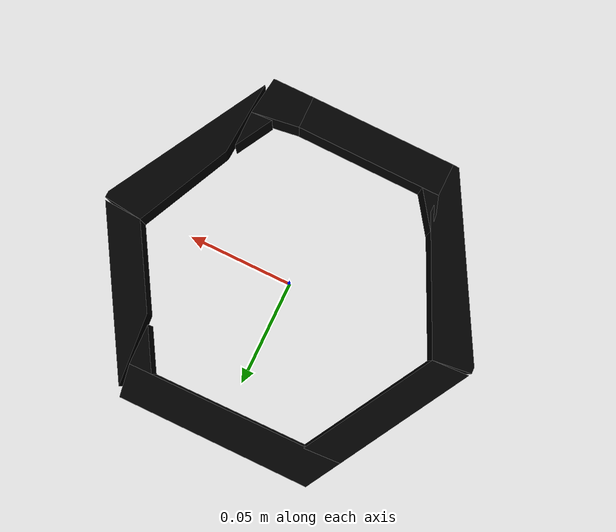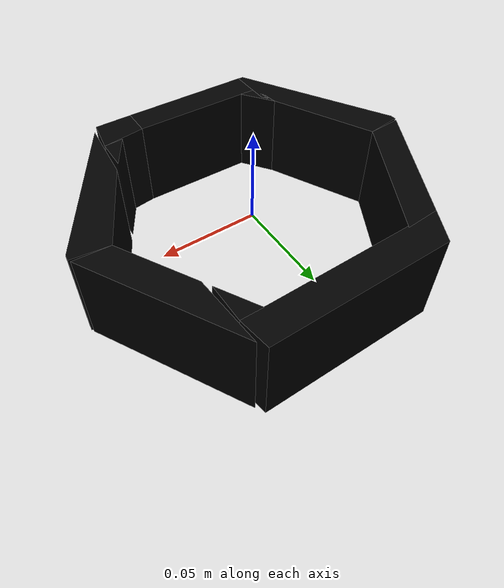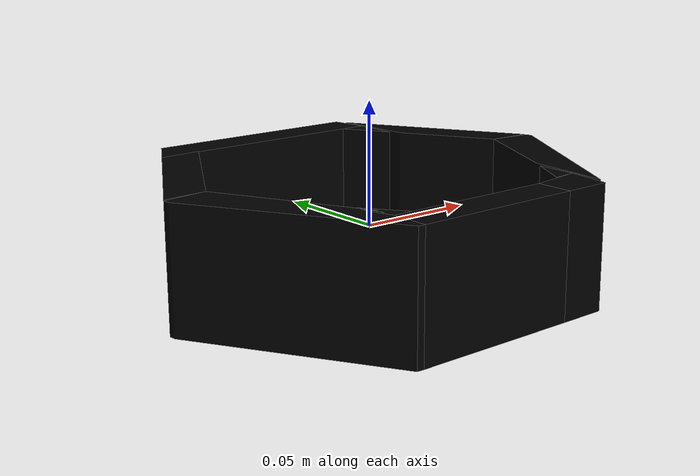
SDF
<?xml version='1.0' encoding='UTF-8'?>
<!-- This SDF was autogenerated by obj_to_drake_sdf.py -->
<sdf version="1.7">
  <model name="nut">
    <link name="body">
      <inertial>
        <pose>0 0 0 0 0 0</pose>
        <mass>1</mass>
        <inertia>
          <ixx>0.0031597229</ixx>
          <iyy>0.0031597198</iyy>
          <izz>0.0059027761</izz>
          <ixy>3.7473973e-19</ixy>
          <ixz>-1.405274e-20</ixz>
          <iyz>-0</iyz>
        </inertia>
      </inertial>
      <visual name="convex_0">
        <pose>0 0 0 0 0 0</pose>
        <geometry>
          <mesh>
            <uri>nut_convex_0.obj</uri>
          </mesh>
        </geometry>
        <material>
          <diffuse>0 0 0 1</diffuse>
        </material>
      </visual>
      <collision name="convex_0_volume">
        <pose>0 0 0 0 0 0</pose>
        <geometry>
          <mesh>
            <uri>nut_convex_0.obj</uri>
          </mesh>
        </geometry>
        <drake:proximity_properties xmlns:drake="uri:drake">
          <drake:compliant_hydroelastic/>
          <drake:hydroelastic_modulus> 3.0e7 </drake:hydroelastic_modulus>
          <drake:mesh_resolution_hint> 0.18 </drake:mesh_resolution_hint>
          <drake:hunt_crossley_dissipation>10</drake:hunt_crossley_dissipation>
          <drake:mu_dynamic>0.3</drake:mu_dynamic>
        </drake:proximity_properties>
      </collision>
      <visual name="convex_1">
        <pose>0 0 0 0 0 0</pose>
        <geometry>
          <mesh>
            <uri>nut_convex_1.obj</uri>
          </mesh>
        </geometry>
        <material>
          <diffuse>0 0 0 1</diffuse>
        </material>
      </visual>
      <collision name="convex_1_volume">
        <pose>0 0 0 0 0 0</pose>
        <geometry>
          <mesh>
            <uri>nut_convex_1.obj</uri>
          </mesh>
        </geometry>
        <drake:proximity_properties xmlns:drake="uri:drake">
          <drake:compliant_hydroelastic/>
          <drake:hydroelastic_modulus> 3.0e7 </drake:hydroelastic_modulus>
          <drake:mesh_resolution_hint> 0.18 </drake:mesh_resolution_hint>
          <drake:hunt_crossley_dissipation>10</drake:hunt_crossley_dissipation>
          <drake:mu_dynamic>0.3</drake:mu_dynamic>
        </drake:proximity_properties>
      </collision>
      <visual name="convex_2">
        <pose>0 0 0 0 0 0</pose>
        <geometry>
          <mesh>
            <uri>nut_convex_2.obj</uri>
          </mesh>
        </geometry>
        <material>
          <diffuse>0 0 0 1</diffuse>
        </material>
      </visual>
      <collision name="convex_2_volume">
        <pose>0 0 0 0 0 0</pose>
        <geometry>
          <mesh>
            <uri>nut_convex_2.obj</uri>
          </mesh>
        </geometry>
        <drake:proximity_properties xmlns:drake="uri:drake">
          <drake:compliant_hydroelastic/>
          <drake:hydroelastic_modulus> 3.0e7 </drake:hydroelastic_modulus>
          <drake:mesh_resolution_hint> 0.18 </drake:mesh_resolution_hint>
          <drake:hunt_crossley_dissipation>10</drake:hunt_crossley_dissipation>
          <drake:mu_dynamic>0.3</drake:mu_dynamic>
        </drake:proximity_properties>
      </collision>
      <visual name="convex_3">
        <pose>0 0 0 0 0 0</pose>
        <geometry>
          <mesh>
            <uri>nut_convex_3.obj</uri>
          </mesh>
        </geometry>
        <material>
          <diffuse>0 0 0 1</diffuse>
        </material>
      </visual>
      <collision name="convex_3_volume">
        <pose>0 0 0 0 0 0</pose>
        <geometry>
          <mesh>
            <uri>nut_convex_3.obj</uri>
          </mesh>
        </geometry>
        <drake:proximity_properties xmlns:drake="uri:drake">
          <drake:compliant_hydroelastic/>
          <drake:hydroelastic_modulus> 3.0e7 </drake:hydroelastic_modulus>
          <drake:mesh_resolution_hint> 0.18 </drake:mesh_resolution_hint>
          <drake:hunt_crossley_dissipation>10</drake:hunt_crossley_dissipation>
          <drake:mu_dynamic>0.3</drake:mu_dynamic>
        </drake:proximity_properties>
      </collision>
      <visual name="convex_4">
        <pose>0 0 0 0 0 0</pose>
        <geometry>
          <mesh>
            <uri>nut_convex_4.obj</uri>
          </mesh>
        </geometry>
        <material>
          <diffuse>0 0 0 1</diffuse>
        </material>
      </visual>
      <collision name="convex_4_volume">
        <pose>0 0 0 0 0 0</pose>
        <geometry>
          <mesh>
            <uri>nut_convex_4.obj</uri>
          </mesh>
        </geometry>
        <drake:proximity_properties xmlns:drake="uri:drake">
          <drake:compliant_hydroelastic/>
          <drake:hydroelastic_modulus> 3.0e7 </drake:hydroelastic_modulus>
          <drake:mesh_resolution_hint> 0.18 </drake:mesh_resolution_hint>
          <drake:hunt_crossley_dissipation>10</drake:hunt_crossley_dissipation>
          <drake:mu_dynamic>0.3</drake:mu_dynamic>
        </drake:proximity_properties>
      </collision>
      <visual name="convex_5">
        <pose>0 0 0 0 0 0</pose>
        <geometry>
          <mesh>
            <uri>nut_convex_5.obj</uri>
          </mesh>
        </geometry>
        <material>
          <diffuse>0 0 0 1</diffuse>
        </material>
      </visual>
      <collision name="convex_5_volume">
        <pose>0 0 0 0 0 0</pose>
        <geometry>
          <mesh>
            <uri>nut_convex_5.obj</uri>
          </mesh>
        </geometry>
        <drake:proximity_properties xmlns:drake="uri:drake">
          <drake:compliant_hydroelastic/>
          <drake:hydroelastic_modulus> 3.0e7 </drake:hydroelastic_modulus>
          <drake:mesh_resolution_hint> 0.18 </drake:mesh_resolution_hint>
          <drake:hunt_crossley_dissipation>10</drake:hunt_crossley_dissipation>
          <drake:mu_dynamic>0.3</drake:mu_dynamic>
        </drake:proximity_properties>
      </collision>
      <visual name="convex_6">
        <pose>0 0 0 0 0 0</pose>
        <geometry>
          <mesh>
            <uri>nut_convex_6.obj</uri>
          </mesh>
        </geometry>
        <material>
          <diffuse>0 0 0 1</diffuse>
        </material>
      </visual>
      <collision name="convex_6_volume">
        <pose>0 0 0 0 0 0</pose>
        <geometry>
          <mesh>
            <uri>nut_convex_6.obj</uri>
          </mesh>
        </geometry>
        <drake:proximity_properties xmlns:drake="uri:drake">
          <drake:compliant_hydroelastic/>
          <drake:hydroelastic_modulus> 3.0e7 </drake:hydroelastic_modulus>
          <drake:mesh_resolution_hint> 0.18 </drake:mesh_resolution_hint>
          <drake:hunt_crossley_dissipation>10</drake:hunt_crossley_dissipation>
          <drake:mu_dynamic>0.3</drake:mu_dynamic>
        </drake:proximity_properties>
      </collision>
      <visual name="convex_7">
        <pose>0 0 0 0 0 0</pose>
        <geometry>
          <mesh>
            <uri>nut_convex_7.obj</uri>
          </mesh>
        </geometry>
        <material>
          <diffuse>0 0 0 1</diffuse>
        </material>
      </visual>
      <collision name="convex_7_volume">
        <pose>0 0 0 0 0 0</pose>
        <geometry>
          <mesh>
            <uri>nut_convex_7.obj</uri>
          </mesh>
        </geometry>
        <drake:proximity_properties xmlns:drake="uri:drake">
          <drake:compliant_hydroelastic/>
          <drake:hydroelastic_modulus> 3.0e7 </drake:hydroelastic_modulus>
          <drake:mesh_resolution_hint> 0.18 </drake:mesh_resolution_hint>
          <drake:hunt_crossley_dissipation>10</drake:hunt_crossley_dissipation>
          <drake:mu_dynamic>0.3</drake:mu_dynamic>
        </drake:proximity_properties>
      </collision>
      <visual name="convex_8">
        <pose>0 0 0 0 0 0</pose>
        <geometry>
          <mesh>
            <uri>nut_convex_8.obj</uri>
          </mesh>
        </geometry>
        <material>
          <diffuse>0 0 0 1</diffuse>
        </material>
      </visual>
      <collision name="convex_8_volume">
        <pose>0 0 0 0 0 0</pose>
        <geometry>
          <mesh>
            <uri>nut_convex_8.obj</uri>
          </mesh>
        </geometry>
        <drake:proximity_properties xmlns:drake="uri:drake">
          <drake:compliant_hydroelastic/>
          <drake:hydroelastic_modulus> 3.0e7 </drake:hydroelastic_modulus>
          <drake:mesh_resolution_hint> 0.18 </drake:mesh_resolution_hint>
          <drake:hunt_crossley_dissipation>10</drake:hunt_crossley_dissipation>
          <drake:mu_dynamic>0.3</drake:mu_dynamic>
        </drake:proximity_properties>
      </collision>
      <visual name="convex_9">
        <pose>0 0 0 0 0 0</pose>
        <geometry>
          <mesh>
            <uri>nut_convex_9.obj</uri>
          </mesh>
        </geometry>
        <material>
          <diffuse>0 0 0 1</diffuse>
        </material>
      </visual>
      <collision name="convex_9_volume">
        <pose>0 0 0 0 0 0</pose>
        <geometry>
          <mesh>
            <uri>nut_convex_9.obj</uri>
          </mesh>
        </geometry>
        <drake:proximity_properties xmlns:drake="uri:drake">
          <drake:compliant_hydroelastic/>
          <drake:hydroelastic_modulus> 3.0e7 </drake:hydroelastic_modulus>
          <drake:mesh_resolution_hint> 0.18 </drake:mesh_resolution_hint>
          <drake:hunt_crossley_dissipation>10</drake:hunt_crossley_dissipation>
          <drake:mu_dynamic>0.3</drake:mu_dynamic>
        </drake:proximity_properties>
      </collision>
    </link>
  </model>
</sdf>
